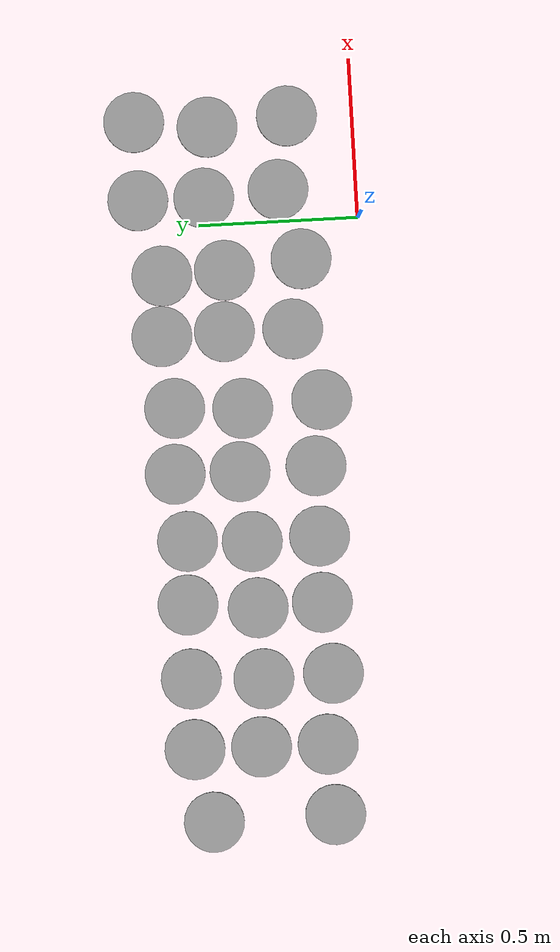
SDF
<sdf version="1.6">
 <world name="default">
  <model name="unit_cylinder_clone_clone_61">
   <pose>-1.8706 0.55485 0.008111 0 -0 0</pose>
   <link name="link">
    <inertial>
     <mass>1</mass>
     <inertia><ixx>0.145833</ixx><ixy>0</ixy><ixz>0</ixz><iyy>0.145833</iyy><iyz>0</iyz><izz>0.125</izz></inertia>
    </inertial>
    <collision name="collision">
     <geometry><cylinder><radius>0.0950718</radius><length>0.0162339</length></cylinder></geometry>
    </collision>
    <visual name="visual">
     <geometry><cylinder><radius>0.0950718</radius><length>0.0162339</length></cylinder></geometry>
     <material>
      <script><name>Gazebo/Grey</name><uri>file://media/materials/scripts/gazebo.material</uri></script>
     </material>
    </visual>
   </link>
  </model>
  <model name="unit_cylinder_clone_clone_63">
   <pose>-1.86758 0.173126 0.008111 0 -0 0</pose>
   <link name="link">
    <inertial>
     <mass>1</mass>
     <inertia><ixx>0.145833</ixx><ixy>0</ixy><ixz>0</ixz><iyy>0.145833</iyy><iyz>0</iyz><izz>0.125</izz></inertia>
    </inertial>
    <collision name="collision">
     <geometry><cylinder><radius>0.0950718</radius><length>0.0162339</length></cylinder></geometry>
    </collision>
    <visual name="visual">
     <geometry><cylinder><radius>0.0950718</radius><length>0.0162339</length></cylinder></geometry>
     <material>
      <script><name>Gazebo/Grey</name><uri>file://media/materials/scripts/gazebo.material</uri></script>
     </material>
    </visual>
   </link>
  </model>
  <model name="unit_cylinder_clone_clone_70">
   <pose>-1.64574 0.184811 0.008111 0 -0 0</pose>
   <link name="link">
    <inertial>
     <mass>1</mass>
     <inertia><ixx>0.145833</ixx><ixy>0</ixy><ixz>0</ixz><iyy>0.145833</iyy><iyz>0</iyz><izz>0.125</izz></inertia>
    </inertial>
    <collision name="collision">
     <geometry><cylinder><radius>0.0950718</radius><length>0.0162339</length></cylinder></geometry>
    </collision>
    <visual name="visual">
     <geometry><cylinder><radius>0.0950718</radius><length>0.0162339</length></cylinder></geometry>
     <material>
      <script><name>Gazebo/Grey</name><uri>file://media/materials/scripts/gazebo.material</uri></script>
     </material>
    </visual>
   </link>
  </model>
  <model name="unit_cylinder_clone_clone_71">
   <pose>-1.64263 0.393913 0.008111 0 -0 0</pose>
   <link name="link">
    <inertial>
     <mass>1</mass>
     <inertia><ixx>0.145833</ixx><ixy>0</ixy><ixz>0</ixz><iyy>0.145833</iyy><iyz>0</iyz><izz>0.125</izz></inertia>
    </inertial>
    <collision name="collision">
     <geometry><cylinder><radius>0.0950718</radius><length>0.0162339</length></cylinder></geometry>
    </collision>
    <visual name="visual">
     <geometry><cylinder><radius>0.0950718</radius><length>0.0162339</length></cylinder></geometry>
     <material>
      <script><name>Gazebo/Grey</name><uri>file://media/materials/scripts/gazebo.material</uri></script>
     </material>
    </visual>
   </link>
  </model>
  <model name="unit_cylinder_clone_clone_72">
   <pose>-1.63952 0.603015 0.008111 0 -0 0</pose>
   <link name="link">
    <inertial>
     <mass>1</mass>
     <inertia><ixx>0.145833</ixx><ixy>0</ixy><ixz>0</ixz><iyy>0.145833</iyy><iyz>0</iyz><izz>0.125</izz></inertia>
    </inertial>
    <collision name="collision">
     <geometry><cylinder><radius>0.0950718</radius><length>0.0162339</length></cylinder></geometry>
    </collision>
    <visual name="visual">
     <geometry><cylinder><radius>0.0950718</radius><length>0.0162339</length></cylinder></geometry>
     <material>
      <script><name>Gazebo/Grey</name><uri>file://media/materials/scripts/gazebo.material</uri></script>
     </material>
    </visual>
   </link>
  </model>
  <model name="unit_cylinder_clone_clone_73">
   <pose>-1.41758 0.602079 0.008111 0 -0 0</pose>
   <link name="link">
    <inertial>
     <mass>1</mass>
     <inertia><ixx>0.145833</ixx><ixy>0</ixy><ixz>0</ixz><iyy>0.145833</iyy><iyz>0</iyz><izz>0.125</izz></inertia>
    </inertial>
    <collision name="collision">
     <geometry><cylinder><radius>0.0950718</radius><length>0.0162339</length></cylinder></geometry>
    </collision>
    <visual name="visual">
     <geometry><cylinder><radius>0.0950718</radius><length>0.0162339</length></cylinder></geometry>
     <material>
      <script><name>Gazebo/Grey</name><uri>file://media/materials/scripts/gazebo.material</uri></script>
     </material>
    </visual>
   </link>
  </model>
  <model name="unit_cylinder_clone_clone_74">
   <pose>-1.42955 0.374661 0.008111 0 -0 0</pose>
   <link name="link">
    <inertial>
     <mass>1</mass>
     <inertia><ixx>0.145833</ixx><ixy>0</ixy><ixz>0</ixz><iyy>0.145833</iyy><iyz>0</iyz><izz>0.125</izz></inertia>
    </inertial>
    <collision name="collision">
     <geometry><cylinder><radius>0.0950718</radius><length>0.0162339</length></cylinder></geometry>
    </collision>
    <visual name="visual">
     <geometry><cylinder><radius>0.0950718</radius><length>0.0162339</length></cylinder></geometry>
     <material>
      <script><name>Gazebo/Grey</name><uri>file://media/materials/scripts/gazebo.material</uri></script>
     </material>
    </visual>
   </link>
  </model>
  <model name="unit_cylinder_clone_clone_75">
   <pose>-1.42423 0.15584 0.008111 0 -0 0</pose>
   <link name="link">
    <inertial>
     <mass>1</mass>
     <inertia><ixx>0.145833</ixx><ixy>0</ixy><ixz>0</ixz><iyy>0.145833</iyy><iyz>0</iyz><izz>0.125</izz></inertia>
    </inertial>
    <collision name="collision">
     <geometry><cylinder><radius>0.0950718</radius><length>0.0162339</length></cylinder></geometry>
    </collision>
    <visual name="visual">
     <geometry><cylinder><radius>0.0950718</radius><length>0.0162339</length></cylinder></geometry>
     <material>
      <script><name>Gazebo/Grey</name><uri>file://media/materials/scripts/gazebo.material</uri></script>
     </material>
    </visual>
   </link>
  </model>
  <model name="unit_cylinder_clone_clone_82">
   <pose>-1.20006 0.17802 0.008114 4e-06 -0 0</pose>
   <link name="link">
    <inertial>
     <mass>1</mass>
     <inertia><ixx>0.145833</ixx><ixy>0</ixy><ixz>0</ixz><iyy>0.145833</iyy><iyz>0</iyz><izz>0.125</izz></inertia>
    </inertial>
    <collision name="collision">
     <geometry><cylinder><radius>0.0950718</radius><length>0.0162339</length></cylinder></geometry>
    </collision>
    <visual name="visual">
     <geometry><cylinder><radius>0.0950718</radius><length>0.0162339</length></cylinder></geometry>
     <material>
      <script><name>Gazebo/Grey</name><uri>file://media/materials/scripts/gazebo.material</uri></script>
     </material>
    </visual>
   </link>
  </model>
  <model name="unit_cylinder_clone_clone_83">
   <pose>-1.20565 0.380203 0.008114 4e-06 -0 0</pose>
   <link name="link">
    <inertial>
     <mass>1</mass>
     <inertia><ixx>0.145833</ixx><ixy>0</ixy><ixz>0</ixz><iyy>0.145833</iyy><iyz>0</iyz><izz>0.125</izz></inertia>
    </inertial>
    <collision name="collision">
     <geometry><cylinder><radius>0.0950718</radius><length>0.0162339</length></cylinder></geometry>
    </collision>
    <visual name="visual">
     <geometry><cylinder><radius>0.0950718</radius><length>0.0162339</length></cylinder></geometry>
     <material>
      <script><name>Gazebo/Grey</name><uri>file://media/materials/scripts/gazebo.material</uri></script>
     </material>
    </visual>
   </link>
  </model>
  <model name="unit_cylinder_clone_clone_84">
   <pose>-1.18514 0.599773 0.008117 0 -0 0</pose>
   <link name="link">
    <inertial>
     <mass>1</mass>
     <inertia><ixx>0.145833</ixx><ixy>0</ixy><ixz>0</ixz><iyy>0.145833</iyy><iyz>0</iyz><izz>0.125</izz></inertia>
    </inertial>
    <collision name="collision">
     <geometry><cylinder><radius>0.0950718</radius><length>0.0162339</length></cylinder></geometry>
    </collision>
    <visual name="visual">
     <geometry><cylinder><radius>0.0950718</radius><length>0.0162339</length></cylinder></geometry>
     <material>
      <script><name>Gazebo/Grey</name><uri>file://media/materials/scripts/gazebo.material</uri></script>
     </material>
    </visual>
   </link>
  </model>
  <model name="unit_cylinder_clone_clone_85">
   <pose>-0.985606 0.590075 0.008108 0 -0 0</pose>
   <link name="link">
    <inertial>
     <mass>1</mass>
     <inertia><ixx>0.145833</ixx><ixy>0</ixy><ixz>0</ixz><iyy>0.145833</iyy><iyz>0</iyz><izz>0.125</izz></inertia>
    </inertial>
    <collision name="collision">
     <geometry><cylinder><radius>0.0950718</radius><length>0.0162339</length></cylinder></geometry>
    </collision>
    <visual name="visual">
     <geometry><cylinder><radius>0.0950718</radius><length>0.0162339</length></cylinder></geometry>
     <material>
      <script><name>Gazebo/Grey</name><uri>file://media/materials/scripts/gazebo.material</uri></script>
     </material>
    </visual>
   </link>
  </model>
  <model name="unit_cylinder_clone_clone_86">
   <pose>-0.997312 0.387239 0.008117 0 -0 0</pose>
   <link name="link">
    <inertial>
     <mass>1</mass>
     <inertia><ixx>0.145833</ixx><ixy>0</ixy><ixz>0</ixz><iyy>0.145833</iyy><iyz>0</iyz><izz>0.125</izz></inertia>
    </inertial>
    <collision name="collision">
     <geometry><cylinder><radius>0.0950718</radius><length>0.0162339</length></cylinder></geometry>
    </collision>
    <visual name="visual">
     <geometry><cylinder><radius>0.0950718</radius><length>0.0162339</length></cylinder></geometry>
     <material>
      <script><name>Gazebo/Grey</name><uri>file://media/materials/scripts/gazebo.material</uri></script>
     </material>
    </visual>
   </link>
  </model>
  <model name="unit_cylinder_clone_clone_87">
   <pose>-0.991771 0.17543 0.008108 0 -0 0</pose>
   <link name="link">
    <inertial>
     <mass>1</mass>
     <inertia><ixx>0.145833</ixx><ixy>0</ixy><ixz>0</ixz><iyy>0.145833</iyy><iyz>0</iyz><izz>0.125</izz></inertia>
    </inertial>
    <collision name="collision">
     <geometry><cylinder><radius>0.0950718</radius><length>0.0162339</length></cylinder></geometry>
    </collision>
    <visual name="visual">
     <geometry><cylinder><radius>0.0950718</radius><length>0.0162339</length></cylinder></geometry>
     <material>
      <script><name>Gazebo/Grey</name><uri>file://media/materials/scripts/gazebo.material</uri></script>
     </material>
    </visual>
   </link>
  </model>
  <model name="unit_cylinder_clone_clone_94">
   <pose>-0.770914 0.174165 0.008108 0 -0 0</pose>
   <link name="link">
    <inertial>
     <mass>1</mass>
     <inertia><ixx>0.145833</ixx><ixy>0</ixy><ixz>0</ixz><iyy>0.145833</iyy><iyz>0</iyz><izz>0.125</izz></inertia>
    </inertial>
    <collision name="collision">
     <geometry><cylinder><radius>0.0950718</radius><length>0.0162339</length></cylinder></geometry>
    </collision>
    <visual name="visual">
     <geometry><cylinder><radius>0.0950718</radius><length>0.0162339</length></cylinder></geometry>
     <material>
      <script><name>Gazebo/Grey</name><uri>file://media/materials/scripts/gazebo.material</uri></script>
     </material>
    </visual>
   </link>
  </model>
  <model name="unit_cylinder_clone_clone_95">
   <pose>-0.775935 0.413442 0.008108 0 -0 0</pose>
   <link name="link">
    <inertial>
     <mass>1</mass>
     <inertia><ixx>0.145833</ixx><ixy>0</ixy><ixz>0</ixz><iyy>0.145833</iyy><iyz>0</iyz><izz>0.125</izz></inertia>
    </inertial>
    <collision name="collision">
     <geometry><cylinder><radius>0.0950718</radius><length>0.0162339</length></cylinder></geometry>
    </collision>
    <visual name="visual">
     <geometry><cylinder><radius>0.0950718</radius><length>0.0162339</length></cylinder></geometry>
     <material>
      <script><name>Gazebo/Grey</name><uri>file://media/materials/scripts/gazebo.material</uri></script>
     </material>
    </visual>
   </link>
  </model>
  <model name="unit_cylinder_clone_clone_96">
   <pose>-0.772911 0.617174 0.008108 0 -0 0</pose>
   <link name="link">
    <inertial>
     <mass>1</mass>
     <inertia><ixx>0.145833</ixx><ixy>0</ixy><ixz>0</ixz><iyy>0.145833</iyy><iyz>0</iyz><izz>0.125</izz></inertia>
    </inertial>
    <collision name="collision">
     <geometry><cylinder><radius>0.0950718</radius><length>0.0162339</length></cylinder></geometry>
    </collision>
    <visual name="visual">
     <geometry><cylinder><radius>0.0950718</radius><length>0.0162339</length></cylinder></geometry>
     <material>
      <script><name>Gazebo/Grey</name><uri>file://media/materials/scripts/gazebo.material</uri></script>
     </material>
    </visual>
   </link>
  </model>
  <model name="unit_cylinder_clone_clone_97">
   <pose>-0.566477 0.607276 0.008108 0 -0 0</pose>
   <link name="link">
    <inertial>
     <mass>1</mass>
     <inertia><ixx>0.145833</ixx><ixy>0</ixy><ixz>0</ixz><iyy>0.145833</iyy><iyz>0</iyz><izz>0.125</izz></inertia>
    </inertial>
    <collision name="collision">
     <geometry><cylinder><radius>0.0950718</radius><length>0.0162339</length></cylinder></geometry>
    </collision>
    <visual name="visual">
     <geometry><cylinder><radius>0.0950718</radius><length>0.0162339</length></cylinder></geometry>
     <material>
      <script><name>Gazebo/Grey</name><uri>file://media/materials/scripts/gazebo.material</uri></script>
     </material>
    </visual>
   </link>
  </model>
  <model name="unit_cylinder_clone_clone_98">
   <pose>-0.578284 0.393931 0.008108 0 -0 0</pose>
   <link name="link">
    <inertial>
     <mass>1</mass>
     <inertia><ixx>0.145833</ixx><ixy>0</ixy><ixz>0</ixz><iyy>0.145833</iyy><iyz>0</iyz><izz>0.125</izz></inertia>
    </inertial>
    <collision name="collision">
     <geometry><cylinder><radius>0.0950718</radius><length>0.0162339</length></cylinder></geometry>
    </collision>
    <visual name="visual">
     <geometry><cylinder><radius>0.0950718</radius><length>0.0162339</length></cylinder></geometry>
     <material>
      <script><name>Gazebo/Grey</name><uri>file://media/materials/scripts/gazebo.material</uri></script>
     </material>
    </visual>
   </link>
  </model>
  <model name="unit_cylinder_clone_clone_99">
   <pose>-0.564709 0.14474 0.008108 0 -0 0</pose>
   <link name="link">
    <inertial>
     <mass>1</mass>
     <inertia><ixx>0.145833</ixx><ixy>0</ixy><ixz>0</ixz><iyy>0.145833</iyy><iyz>0</iyz><izz>0.125</izz></inertia>
    </inertial>
    <collision name="collision">
     <geometry><cylinder><radius>0.0950718</radius><length>0.0162339</length></cylinder></geometry>
    </collision>
    <visual name="visual">
     <geometry><cylinder><radius>0.0950718</radius><length>0.0162339</length></cylinder></geometry>
     <material>
      <script><name>Gazebo/Grey</name><uri>file://media/materials/scripts/gazebo.material</uri></script>
     </material>
    </visual>
   </link>
  </model>
  <model name="unit_cylinder_clone_clone_105">
   <pose>-0.337838 0.22349 0.008108 0 -0 0</pose>
   <link name="link">
    <inertial>
     <mass>1</mass>
     <inertia><ixx>0.145833</ixx><ixy>0</ixy><ixz>0</ixz><iyy>0.145833</iyy><iyz>0</iyz><izz>0.125</izz></inertia>
    </inertial>
    <collision name="collision">
     <geometry><cylinder><radius>0.0950718</radius><length>0.0162339</length></cylinder></geometry>
    </collision>
    <visual name="visual">
     <geometry><cylinder><radius>0.0950718</radius><length>0.0162339</length></cylinder></geometry>
     <material>
      <script><name>Gazebo/Grey</name><uri>file://media/materials/scripts/gazebo.material</uri></script>
     </material>
    </visual>
   </link>
  </model>
  <model name="unit_cylinder_clone_clone_106">
   <pose>-0.334652 0.437857 0.008107 0 -0 0</pose>
   <link name="link">
    <inertial>
     <mass>1</mass>
     <inertia><ixx>0.145833</ixx><ixy>0</ixy><ixz>0</ixz><iyy>0.145833</iyy><iyz>0</iyz><izz>0.125</izz></inertia>
    </inertial>
    <collision name="collision">
     <geometry><cylinder><radius>0.0950718</radius><length>0.0162339</length></cylinder></geometry>
    </collision>
    <visual name="visual">
     <geometry><cylinder><radius>0.0950718</radius><length>0.0162339</length></cylinder></geometry>
     <material>
      <script><name>Gazebo/Grey</name><uri>file://media/materials/scripts/gazebo.material</uri></script>
     </material>
    </visual>
   </link>
  </model>
  <model name="unit_cylinder_clone_clone_107">
   <pose>-0.339262 0.634799 0.008111 0 -0 1.5e-05</pose>
   <link name="link">
    <inertial>
     <mass>1</mass>
     <inertia><ixx>0.145833</ixx><ixy>0</ixy><ixz>0</ixz><iyy>0.145833</iyy><iyz>0</iyz><izz>0.125</izz></inertia>
    </inertial>
    <collision name="collision">
     <geometry><cylinder><radius>0.0950718</radius><length>0.0162339</length></cylinder></geometry>
    </collision>
    <visual name="visual">
     <geometry><cylinder><radius>0.0950718</radius><length>0.0162339</length></cylinder></geometry>
     <material>
      <script><name>Gazebo/Grey</name><uri>file://media/materials/scripts/gazebo.material</uri></script>
     </material>
    </visual>
   </link>
  </model>
  <model name="unit_cylinder_clone_clone_108">
   <pose>-0.149414 0.624192 0.008111 0 -0 1.5e-05</pose>
   <link name="link">
    <inertial>
     <mass>1</mass>
     <inertia><ixx>0.145833</ixx><ixy>0</ixy><ixz>0</ixz><iyy>0.145833</iyy><iyz>0</iyz><izz>0.125</izz></inertia>
    </inertial>
    <collision name="collision">
     <geometry><cylinder><radius>0.0950718</radius><length>0.0162339</length></cylinder></geometry>
    </collision>
    <visual name="visual">
     <geometry><cylinder><radius>0.0950718</radius><length>0.0162339</length></cylinder></geometry>
     <material>
      <script><name>Gazebo/Grey</name><uri>file://media/materials/scripts/gazebo.material</uri></script>
     </material>
    </visual>
   </link>
  </model>
  <model name="unit_cylinder_clone_clone_109">
   <pose>-0.14232 0.427341 0.008111 0 -0 0</pose>
   <link name="link">
    <inertial>
     <mass>1</mass>
     <inertia><ixx>0.145833</ixx><ixy>0</ixy><ixz>0</ixz><iyy>0.145833</iyy><iyz>0</iyz><izz>0.125</izz></inertia>
    </inertial>
    <collision name="collision">
     <geometry><cylinder><radius>0.0950718</radius><length>0.0162339</length></cylinder></geometry>
    </collision>
    <visual name="visual">
     <geometry><cylinder><radius>0.0950718</radius><length>0.0162339</length></cylinder></geometry>
     <material>
      <script><name>Gazebo/Grey</name><uri>file://media/materials/scripts/gazebo.material</uri></script>
     </material>
    </visual>
   </link>
  </model>
  <model name="unit_cylinder_clone_clone_110">
   <pose>-0.119571 0.18497 0.008114 5e-06 -0 0</pose>
   <link name="link">
    <inertial>
     <mass>1</mass>
     <inertia><ixx>0.145833</ixx><ixy>0</ixy><ixz>0</ixz><iyy>0.145833</iyy><iyz>0</iyz><izz>0.125</izz></inertia>
    </inertial>
    <collision name="collision">
     <geometry><cylinder><radius>0.0950718</radius><length>0.0162339</length></cylinder></geometry>
    </collision>
    <visual name="visual">
     <geometry><cylinder><radius>0.0950718</radius><length>0.0162339</length></cylinder></geometry>
     <material>
      <script><name>Gazebo/Grey</name><uri>file://media/materials/scripts/gazebo.material</uri></script>
     </material>
    </visual>
   </link>
  </model>
  <model name="unit_cylinder_clone_clone_117">
   <pose>0.101976 0.245193 0.008111 0 -0 0</pose>
   <link name="link">
    <inertial>
     <mass>1</mass>
     <inertia><ixx>0.145833</ixx><ixy>0</ixy><ixz>0</ixz><iyy>0.145833</iyy><iyz>0</iyz><izz>0.125</izz></inertia>
    </inertial>
    <collision name="collision">
     <geometry><cylinder><radius>0.0950718</radius><length>0.0162339</length></cylinder></geometry>
    </collision>
    <visual name="visual">
     <geometry><cylinder><radius>0.0950718</radius><length>0.0162339</length></cylinder></geometry>
     <material>
      <script><name>Gazebo/Grey</name><uri>file://media/materials/scripts/gazebo.material</uri></script>
     </material>
    </visual>
   </link>
  </model>
  <model name="unit_cylinder_clone_clone_118">
   <pose>0.087731 0.479465 0.008108 0 -0 0</pose>
   <link name="link">
    <inertial>
     <mass>1</mass>
     <inertia><ixx>0.145833</ixx><ixy>0</ixy><ixz>0</ixz><iyy>0.145833</iyy><iyz>0</iyz><izz>0.125</izz></inertia>
    </inertial>
    <collision name="collision">
     <geometry><cylinder><radius>0.0950718</radius><length>0.0162339</length></cylinder></geometry>
    </collision>
    <visual name="visual">
     <geometry><cylinder><radius>0.0950718</radius><length>0.0162339</length></cylinder></geometry>
     <material>
      <script><name>Gazebo/Grey</name><uri>file://media/materials/scripts/gazebo.material</uri></script>
     </material>
    </visual>
   </link>
  </model>
  <model name="unit_cylinder_clone_clone_119">
   <pose>0.090811 0.686528 0.008108 0 -0 0</pose>
   <link name="link">
    <inertial>
     <mass>1</mass>
     <inertia><ixx>0.145833</ixx><ixy>0</ixy><ixz>0</ixz><iyy>0.145833</iyy><iyz>0</iyz><izz>0.125</izz></inertia>
    </inertial>
    <collision name="collision">
     <geometry><cylinder><radius>0.0950718</radius><length>0.0162339</length></cylinder></geometry>
    </collision>
    <visual name="visual">
     <geometry><cylinder><radius>0.0950718</radius><length>0.0162339</length></cylinder></geometry>
     <material>
      <script><name>Gazebo/Grey</name><uri>file://media/materials/scripts/gazebo.material</uri></script>
     </material>
    </visual>
   </link>
  </model>
  <model name="unit_cylinder_clone_clone_120">
   <pose>0.336682 0.685836 0.008108 0 -0 0</pose>
   <link name="link">
    <inertial>
     <mass>1</mass>
     <inertia><ixx>0.145833</ixx><ixy>0</ixy><ixz>0</ixz><iyy>0.145833</iyy><iyz>0</iyz><izz>0.125</izz></inertia>
    </inertial>
    <collision name="collision">
     <geometry><cylinder><radius>0.0950718</radius><length>0.0162339</length></cylinder></geometry>
    </collision>
    <visual name="visual">
     <geometry><cylinder><radius>0.0950718</radius><length>0.0162339</length></cylinder></geometry>
     <material>
      <script><name>Gazebo/Grey</name><uri>file://media/materials/scripts/gazebo.material</uri></script>
     </material>
    </visual>
   </link>
  </model>
  <model name="unit_cylinder_clone_clone_121">
   <pose>0.309413 0.456981 0.008117 0 -0 0</pose>
   <link name="link">
    <inertial>
     <mass>1</mass>
     <inertia><ixx>0.145833</ixx><ixy>0</ixy><ixz>0</ixz><iyy>0.145833</iyy><iyz>0</iyz><izz>0.125</izz></inertia>
    </inertial>
    <collision name="collision">
     <geometry><cylinder><radius>0.0950718</radius><length>0.0162339</length></cylinder></geometry>
    </collision>
    <visual name="visual">
     <geometry><cylinder><radius>0.0950718</radius><length>0.0162339</length></cylinder></geometry>
     <material>
      <script><name>Gazebo/Grey</name><uri>file://media/materials/scripts/gazebo.material</uri></script>
     </material>
    </visual>
   </link>
  </model>
  <model name="unit_cylinder_clone_clone_122">
   <pose>0.330731 0.206135 0.008111 0 -0 0</pose>
   <link name="link">
    <inertial>
     <mass>1</mass>
     <inertia><ixx>0.145833</ixx><ixy>0</ixy><ixz>0</ixz><iyy>0.145833</iyy><iyz>0</iyz><izz>0.125</izz></inertia>
    </inertial>
    <collision name="collision">
     <geometry><cylinder><radius>0.0950718</radius><length>0.0162339</length></cylinder></geometry>
    </collision>
    <visual name="visual">
     <geometry><cylinder><radius>0.0950718</radius><length>0.0162339</length></cylinder></geometry>
     <material>
      <script><name>Gazebo/Grey</name><uri>file://media/materials/scripts/gazebo.material</uri></script>
     </material>
    </visual>
   </link>
  </model>
 </world>
</sdf>
